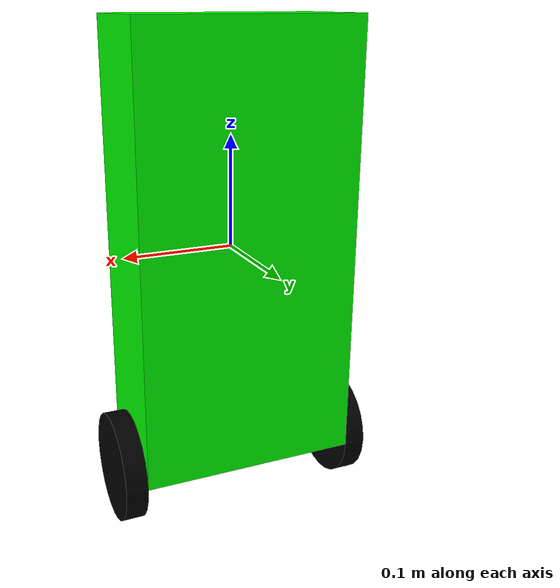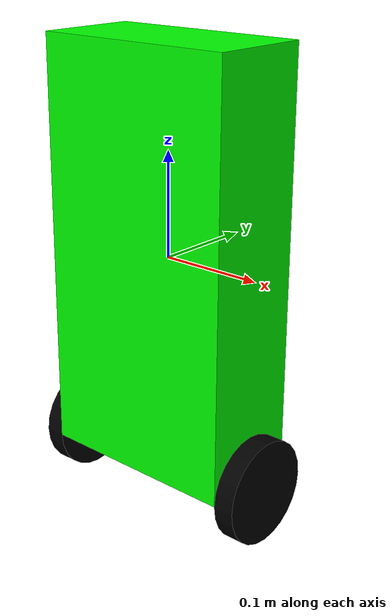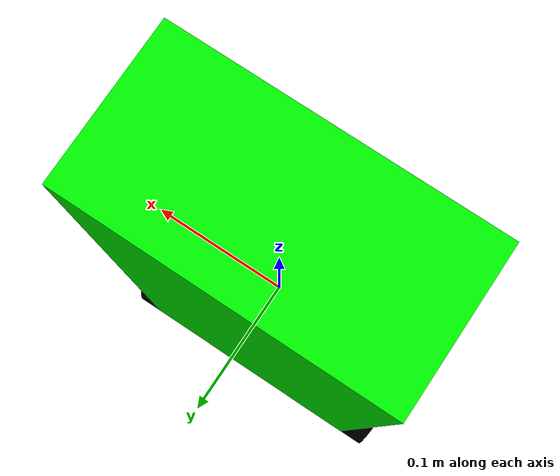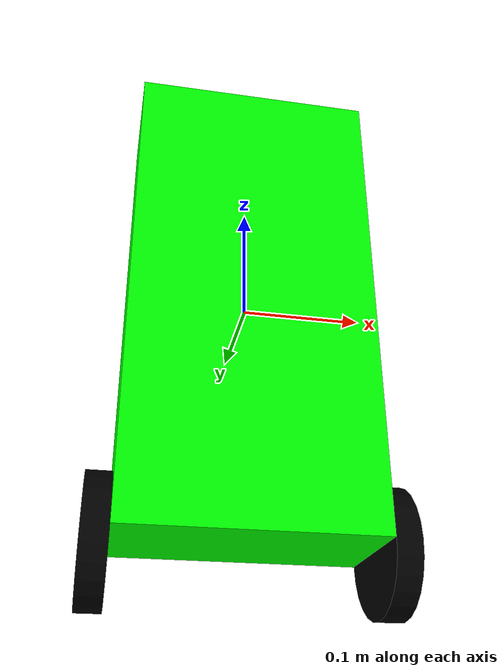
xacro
<?xml version="1.0"?>
<robot name="self_balancing_robot"
  xmlns:xacro="http://www.ros.org/wiki/xacro">

  <!-- Macro for color -->
  <xacro:macro name="material_with_color" params="name color">
    <material name="${name}">
      <color rgba="${color}"/>
    </material>
  </xacro:macro>

  <link name="dummy_root_link">
    <visual>
      <geometry>
        <sphere radius="0.01"/>
      </geometry>
      <material name="Invisible">
        <color rgba="0 0 0 0"/>
      </material>
    </visual>
  </link>

  <!-- Fixed Joint from Dummy Link to Base Link -->
  <joint name="dummy_to_base_joint" type="fixed">
    <parent link="dummy_root_link"/>
    <child link="base_link"/>
    <origin xyz="0 0 0" rpy="0 0 0"/>
  </joint>

  <!-- Robot Base -->
  <link name="base_link">
    <inertial>
      <origin xyz="0 0 0" />
      <mass value="1.5" />
      <inertia ixx="0.01" ixy="0.0" ixz="0.0" iyy="0.01" iyz="0.0" izz="0.02" />
    </inertial>
    <visual>
      <origin xyz="0 0 0" />
      <geometry>
        <box size="0.2 0.1 0.4" />
      </geometry>
      <xacro:material_with_color name="Green" color="0 1 0 1" />
    </visual>
    <collision>
      <origin xyz="0 0 0" />
      <geometry>
        <box size="0.2 0.1 0.4" />
      </geometry>
    </collision>
  </link>

  <!-- Left Wheel -->
  <link name="left_wheel">
    <inertial>
      <origin xyz="0 0 0" />
      <mass value="0.3" />
      <inertia ixx="0.005" ixy="0.0" ixz="0.0" iyy="0.005" iyz="0.0" izz="0.01" />
    </inertial>
    <visual>
      <geometry>
        <cylinder radius="0.05" length="0.02" />
      </geometry>
      <xacro:material_with_color name="Black" color="0 0 0 1" />
    </visual>
    <collision>
      <geometry>
        <cylinder radius="0.05" length="0.02" />
      </geometry>
    </collision>
  </link>

  <!-- Right Wheel -->
  <link name="right_wheel">
    <inertial>
      <origin xyz="0 0 0" />
      <mass value="0.3" />
      <inertia ixx="0.005" ixy="0.0" ixz="0.0" iyy="0.005" iyz="0.0" izz="0.01" />
    </inertial>
    <visual>
      <geometry>
        <cylinder radius="0.05" length="0.02" />
      </geometry>
      <xacro:material_with_color name="Black" color="0 0 0 1" />
    </visual>
    <collision>
      <geometry>
        <cylinder radius="0.05" length="0.02" />
      </geometry>
    </collision>
  </link>

  <!-- Joint Definitions -->

  <!-- Left Wheel Joint -->
  <joint name="left_wheel_joint" type="revolute">
    <parent link="base_link"/>
    <child link="left_wheel"/>
    <origin xyz="0.11 0.0 -0.2" rpy="0 1.57 0"/>
    <axis xyz="0 0 1"/>
  </joint>

  <!-- Right Wheel Joint -->
  <joint name="right_wheel_joint" type="revolute">
    <parent link="base_link"/>
    <child link="right_wheel"/>
    <origin xyz="-0.11 0.0 -0.2" rpy="0 1.57 0"/>
    <axis xyz="0 0 1"/>
  </joint>

  <transmission name="left_wheel_transmission">
    <type>transmission_interface/SimpleTransmission</type>
    <joint name="left_wheel_joint">
      <hardwareInterface>hardware_interface/VelocityJointInterface</hardwareInterface>
    </joint>
    <actuator name="left_wheel_motor">
      <hardwareInterface>hardware_interface/VelocityJointInterface</hardwareInterface>
    </actuator>
    <mechanicalReduction>1.0</mechanicalReduction>
  </transmission>

  <transmission name="right_wheel_transmission">
    <type>transmission_interface/SimpleTransmission</type>
    <joint name="right_wheel_joint">
      <hardwareInterface>hardware_interface/VelocityJointInterface</hardwareInterface>
    </joint>
    <actuator name="right_wheel_motor">
      <hardwareInterface>hardware_interface/VelocityJointInterface</hardwareInterface>
    </actuator>
    <mechanicalReduction>1.0</mechanicalReduction>
  </transmission>

</robot>
